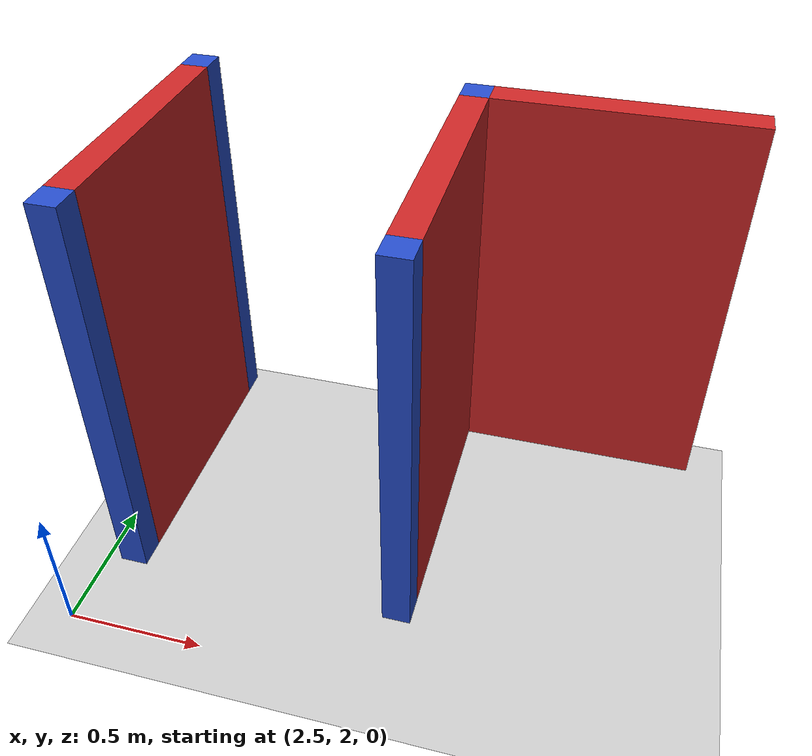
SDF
<sdf version="1.7">
 <world name="default">
  <model name="ground_plane">
   <static>1</static>
   <link name="link">
    <collision name="collision">
     <geometry><plane><normal>0 0 1</normal><size>100 100</size></plane></geometry>
     <surface><friction><ode><mu>100</mu><mu2>50</mu2></ode></friction></surface>
    </collision>
    <visual name="visual">
     <cast_shadows>0</cast_shadows>
     <geometry><plane><normal>0 0 1</normal><size>100 100</size></plane></geometry>
     <material>
      <script><uri>file://media/materials/scripts/gazebo.material</uri><name>Gazebo/Grey</name></script>
     </material>
    </visual>
   </link>
  </model>
  <model name="maze_demo">
   <link name="Joint_8_-12">
    <pose>8 -12 0 0 -0 0</pose>
    <visual name="Wall_2_Visual">
     <pose>0 0 0.75 0 -0 0</pose>
     <geometry><box><size>0.1 0.1 1.5</size></box></geometry>
     <material>
      <script><uri>file://media/materials/scripts/gazebo.material</uri><name>Gazebo/Blue</name></script>
      <ambient>0.996078 0.47451 0.0196078 1</ambient>
      <shader type="pixel"/>
     </material>
     <meta><layer>0</layer></meta>
    </visual>
    <collision name="Wall_2_Collision">
     <pose>0 0 0.75 0 -0 0</pose>
     <geometry><box><size>0.1 0.1 1.5</size></box></geometry>
     <surface>
      <friction>
       <ode><mu>1</mu><mu2>1</mu2><fdir1>0 0 0</fdir1><slip1>0</slip1><slip2>0</slip2></ode>
       <torsional>
        <coefficient>1</coefficient>
        <patch_radius>0</patch_radius>
        <surface_radius>0</surface_radius>
        <use_patch_radius>1</use_patch_radius>
        <ode><slip>0</slip></ode>
       </torsional>
      </friction>
      <bounce><restitution_coefficient>0</restitution_coefficient><threshold>1e+06</threshold></bounce>
      <contact>
       <collide_without_contact>0</collide_without_contact>
       <collide_without_contact_bitmask>1</collide_without_contact_bitmask>
       <collide_bitmask>1</collide_bitmask>
       <ode>
        <soft_cfm>0</soft_cfm>
        <soft_erp>0.2</soft_erp>
        <kp>1e+13</kp>
        <kd>1</kd>
        <max_vel>0.01</max_vel>
        <min_depth>0</min_depth>
       </ode>
       <bullet>
        <split_impulse>1</split_impulse>
        <split_impulse_penetration_threshold>-0.01</split_impulse_penetration_threshold>
        <soft_cfm>0</soft_cfm>
        <soft_erp>0.2</soft_erp>
        <kp>1e+13</kp>
        <kd>1</kd>
       </bullet>
      </contact>
     </surface>
    </collision>
   </link>
   <link name="Joint_8_-13">
    <pose>8 -13 0 0 -0 0</pose>
    <visual name="Wall_2_Visual">
     <pose>0 0 0.75 0 -0 0</pose>
     <geometry><box><size>0.1 0.1 1.5</size></box></geometry>
     <material>
      <script><uri>file://media/materials/scripts/gazebo.material</uri><name>Gazebo/Blue</name></script>
      <ambient>0.996078 0.47451 0.0196078 1</ambient>
      <shader type="pixel"/>
     </material>
     <meta><layer>0</layer></meta>
    </visual>
    <collision name="Wall_2_Collision">
     <pose>0 0 0.75 0 -0 0</pose>
     <geometry><box><size>0.1 0.1 1.5</size></box></geometry>
     <surface>
      <friction>
       <ode><mu>1</mu><mu2>1</mu2><fdir1>0 0 0</fdir1><slip1>0</slip1><slip2>0</slip2></ode>
       <torsional>
        <coefficient>1</coefficient>
        <patch_radius>0</patch_radius>
        <surface_radius>0</surface_radius>
        <use_patch_radius>1</use_patch_radius>
        <ode><slip>0</slip></ode>
       </torsional>
      </friction>
      <bounce><restitution_coefficient>0</restitution_coefficient><threshold>1e+06</threshold></bounce>
      <contact>
       <collide_without_contact>0</collide_without_contact>
       <collide_without_contact_bitmask>1</collide_without_contact_bitmask>
       <collide_bitmask>1</collide_bitmask>
       <ode>
        <soft_cfm>0</soft_cfm>
        <soft_erp>0.2</soft_erp>
        <kp>1e+13</kp>
        <kd>1</kd>
        <max_vel>0.01</max_vel>
        <min_depth>0</min_depth>
       </ode>
       <bullet>
        <split_impulse>1</split_impulse>
        <split_impulse_penetration_threshold>-0.01</split_impulse_penetration_threshold>
        <soft_cfm>0</soft_cfm>
        <soft_erp>0.2</soft_erp>
        <kp>1e+13</kp>
        <kd>1</kd>
       </bullet>
      </contact>
     </surface>
    </collision>
   </link>
   <link name="Joint_9_-12">
    <pose>9 -12 0 0 -0 0</pose>
    <visual name="Wall_2_Visual">
     <pose>0 0 0.75 0 -0 0</pose>
     <geometry><box><size>0.1 0.1 1.5</size></box></geometry>
     <material>
      <script><uri>file://media/materials/scripts/gazebo.material</uri><name>Gazebo/Blue</name></script>
      <ambient>0.996078 0.47451 0.0196078 1</ambient>
      <shader type="pixel"/>
     </material>
     <meta><layer>0</layer></meta>
    </visual>
    <collision name="Wall_2_Collision">
     <pose>0 0 0.75 0 -0 0</pose>
     <geometry><box><size>0.1 0.1 1.5</size></box></geometry>
     <surface>
      <friction>
       <ode><mu>1</mu><mu2>1</mu2><fdir1>0 0 0</fdir1><slip1>0</slip1><slip2>0</slip2></ode>
       <torsional>
        <coefficient>1</coefficient>
        <patch_radius>0</patch_radius>
        <surface_radius>0</surface_radius>
        <use_patch_radius>1</use_patch_radius>
        <ode><slip>0</slip></ode>
       </torsional>
      </friction>
      <bounce><restitution_coefficient>0</restitution_coefficient><threshold>1e+06</threshold></bounce>
      <contact>
       <collide_without_contact>0</collide_without_contact>
       <collide_without_contact_bitmask>1</collide_without_contact_bitmask>
       <collide_bitmask>1</collide_bitmask>
       <ode>
        <soft_cfm>0</soft_cfm>
        <soft_erp>0.2</soft_erp>
        <kp>1e+13</kp>
        <kd>1</kd>
        <max_vel>0.01</max_vel>
        <min_depth>0</min_depth>
       </ode>
       <bullet>
        <split_impulse>1</split_impulse>
        <split_impulse_penetration_threshold>-0.01</split_impulse_penetration_threshold>
        <soft_cfm>0</soft_cfm>
        <soft_erp>0.2</soft_erp>
        <kp>1e+13</kp>
        <kd>1</kd>
       </bullet>
      </contact>
     </surface>
    </collision>
   </link>
   <link name="Joint_9_-13">
    <pose>9 -13 0 0 -0 0</pose>
    <visual name="Wall_2_Visual">
     <pose>0 0 0.75 0 -0 0</pose>
     <geometry><box><size>0.1 0.1 1.5</size></box></geometry>
     <material>
      <script><uri>file://media/materials/scripts/gazebo.material</uri><name>Gazebo/Blue</name></script>
      <ambient>0.996078 0.47451 0.0196078 1</ambient>
      <shader type="pixel"/>
     </material>
     <meta><layer>0</layer></meta>
    </visual>
    <collision name="Wall_2_Collision">
     <pose>0 0 0.75 0 -0 0</pose>
     <geometry><box><size>0.1 0.1 1.5</size></box></geometry>
     <surface>
      <friction>
       <ode><mu>1</mu><mu2>1</mu2><fdir1>0 0 0</fdir1><slip1>0</slip1><slip2>0</slip2></ode>
       <torsional>
        <coefficient>1</coefficient>
        <patch_radius>0</patch_radius>
        <surface_radius>0</surface_radius>
        <use_patch_radius>1</use_patch_radius>
        <ode><slip>0</slip></ode>
       </torsional>
      </friction>
      <bounce><restitution_coefficient>0</restitution_coefficient><threshold>1e+06</threshold></bounce>
      <contact>
       <collide_without_contact>0</collide_without_contact>
       <collide_without_contact_bitmask>1</collide_without_contact_bitmask>
       <collide_bitmask>1</collide_bitmask>
       <ode>
        <soft_cfm>0</soft_cfm>
        <soft_erp>0.2</soft_erp>
        <kp>1e+13</kp>
        <kd>1</kd>
        <max_vel>0.01</max_vel>
        <min_depth>0</min_depth>
       </ode>
       <bullet>
        <split_impulse>1</split_impulse>
        <split_impulse_penetration_threshold>-0.01</split_impulse_penetration_threshold>
        <soft_cfm>0</soft_cfm>
        <soft_erp>0.2</soft_erp>
        <kp>1e+13</kp>
        <kd>1</kd>
       </bullet>
      </contact>
     </surface>
    </collision>
   </link>
   <link name="Wall_8_12_v">
    <pose>8 -12.5 0 0 -0 1.5708</pose>
    <visual name="Wall_0_Visual">
     <pose>0 0 0.75 0 -0 0</pose>
     <geometry><box><size>0.9 0.1 1.5</size></box></geometry>
     <material>
      <script><uri>file://media/materials/scripts/gazebo.material</uri><name>Gazebo/Red</name></script>
      <ambient>0.921569 0.807843 0.615686 1</ambient>
      <shader type="pixel"/>
     </material>
     <meta><layer>0</layer></meta>
    </visual>
    <collision name="Wall_0_Collision">
     <pose>0 0 0.75 0 -0 0</pose>
     <geometry><box><size>0.9 0.1 1.5</size></box></geometry>
     <surface>
      <friction>
       <ode><mu>1</mu><mu2>1</mu2><fdir1>0 0 0</fdir1><slip1>0</slip1><slip2>0</slip2></ode>
       <torsional>
        <coefficient>1</coefficient>
        <patch_radius>0</patch_radius>
        <surface_radius>0</surface_radius>
        <use_patch_radius>1</use_patch_radius>
        <ode><slip>0</slip></ode>
       </torsional>
      </friction>
      <bounce><restitution_coefficient>0</restitution_coefficient><threshold>1e+06</threshold></bounce>
      <contact>
       <collide_without_contact>0</collide_without_contact>
       <collide_without_contact_bitmask>1</collide_without_contact_bitmask>
       <collide_bitmask>1</collide_bitmask>
       <ode>
        <soft_cfm>0</soft_cfm>
        <soft_erp>0.2</soft_erp>
        <kp>1e+13</kp>
        <kd>1</kd>
        <max_vel>0.01</max_vel>
        <min_depth>0</min_depth>
       </ode>
       <bullet>
        <split_impulse>1</split_impulse>
        <split_impulse_penetration_threshold>-0.01</split_impulse_penetration_threshold>
        <soft_cfm>0</soft_cfm>
        <soft_erp>0.2</soft_erp>
        <kp>1e+13</kp>
        <kd>1</kd>
       </bullet>
      </contact>
     </surface>
    </collision>
   </link>
   <link name="Wall_9_12_h">
    <pose>9.5 -12 0 0 -0 0</pose>
    <visual name="Wall_0_Visual">
     <pose>0 0 0.75 0 -0 0</pose>
     <geometry><box><size>0.9 0.1 1.5</size></box></geometry>
     <material>
      <script><uri>file://media/materials/scripts/gazebo.material</uri><name>Gazebo/Red</name></script>
      <ambient>0.921569 0.807843 0.615686 1</ambient>
      <shader type="pixel"/>
     </material>
     <meta><layer>0</layer></meta>
    </visual>
    <collision name="Wall_0_Collision">
     <pose>0 0 0.75 0 -0 0</pose>
     <geometry><box><size>0.9 0.1 1.5</size></box></geometry>
     <surface>
      <friction>
       <ode><mu>1</mu><mu2>1</mu2><fdir1>0 0 0</fdir1><slip1>0</slip1><slip2>0</slip2></ode>
       <torsional>
        <coefficient>1</coefficient>
        <patch_radius>0</patch_radius>
        <surface_radius>0</surface_radius>
        <use_patch_radius>1</use_patch_radius>
        <ode><slip>0</slip></ode>
       </torsional>
      </friction>
      <bounce><restitution_coefficient>0</restitution_coefficient><threshold>1e+06</threshold></bounce>
      <contact>
       <collide_without_contact>0</collide_without_contact>
       <collide_without_contact_bitmask>1</collide_without_contact_bitmask>
       <collide_bitmask>1</collide_bitmask>
       <ode>
        <soft_cfm>0</soft_cfm>
        <soft_erp>0.2</soft_erp>
        <kp>1e+13</kp>
        <kd>1</kd>
        <max_vel>0.01</max_vel>
        <min_depth>0</min_depth>
       </ode>
       <bullet>
        <split_impulse>1</split_impulse>
        <split_impulse_penetration_threshold>-0.01</split_impulse_penetration_threshold>
        <soft_cfm>0</soft_cfm>
        <soft_erp>0.2</soft_erp>
        <kp>1e+13</kp>
        <kd>1</kd>
       </bullet>
      </contact>
     </surface>
    </collision>
   </link>
   <link name="Wall_9_12_v">
    <pose>9 -12.5 0 0 -0 1.5708</pose>
    <visual name="Wall_0_Visual">
     <pose>0 0 0.75 0 -0 0</pose>
     <geometry><box><size>0.9 0.1 1.5</size></box></geometry>
     <material>
      <script><uri>file://media/materials/scripts/gazebo.material</uri><name>Gazebo/Red</name></script>
      <ambient>0.921569 0.807843 0.615686 1</ambient>
      <shader type="pixel"/>
     </material>
     <meta><layer>0</layer></meta>
    </visual>
    <collision name="Wall_0_Collision">
     <pose>0 0 0.75 0 -0 0</pose>
     <geometry><box><size>0.9 0.1 1.5</size></box></geometry>
     <surface>
      <friction>
       <ode><mu>1</mu><mu2>1</mu2><fdir1>0 0 0</fdir1><slip1>0</slip1><slip2>0</slip2></ode>
       <torsional>
        <coefficient>1</coefficient>
        <patch_radius>0</patch_radius>
        <surface_radius>0</surface_radius>
        <use_patch_radius>1</use_patch_radius>
        <ode><slip>0</slip></ode>
       </torsional>
      </friction>
      <bounce><restitution_coefficient>0</restitution_coefficient><threshold>1e+06</threshold></bounce>
      <contact>
       <collide_without_contact>0</collide_without_contact>
       <collide_without_contact_bitmask>1</collide_without_contact_bitmask>
       <collide_bitmask>1</collide_bitmask>
       <ode>
        <soft_cfm>0</soft_cfm>
        <soft_erp>0.2</soft_erp>
        <kp>1e+13</kp>
        <kd>1</kd>
        <max_vel>0.01</max_vel>
        <min_depth>0</min_depth>
       </ode>
       <bullet>
        <split_impulse>1</split_impulse>
        <split_impulse_penetration_threshold>-0.01</split_impulse_penetration_threshold>
        <soft_cfm>0</soft_cfm>
        <soft_erp>0.2</soft_erp>
        <kp>1e+13</kp>
        <kd>1</kd>
       </bullet>
      </contact>
     </surface>
    </collision>
   </link>
   <static>1</static>
   <pose>-5.34608 15.268 0.093198 0 -0 0</pose>
  </model>
 </world>
</sdf>
